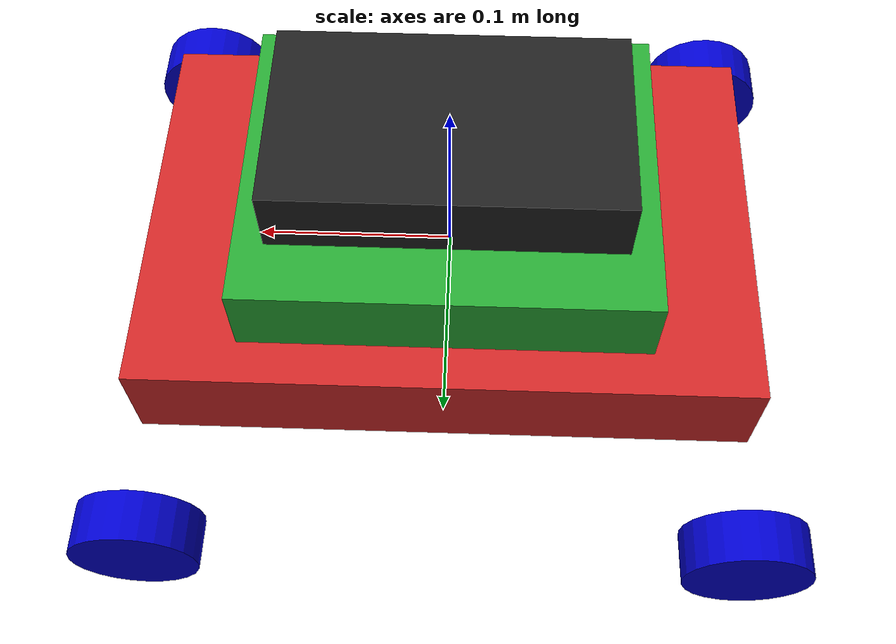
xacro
<?xml version="1.0"?>
<robot xmlns:xacro="http://www.ros.org/wiki/xacro" name="mobile_robot">

<!-- Base Link -->
<link name="base_link">
</link>

<xacro:property name="height" value="0.3048" />
<xacro:property name="width" value="0.2032" />
<xacro:property name="depth" value="0.05" />

<!--Chassis-->
<link name="chassis">
  <visual>
   <origin xyz="0 0 0" rpy="0 0 0"/>​
    <geometry>
      <box size="${height} ${width} ${depth}"/>
    </geometry>
  </visual>
  <collision>
    <geometry>
      <box size="${height} ${width} ${depth}"/>
    </geometry>
  </collision>
  <inertial>
    <mass value="1.0"/> <!-- [kg] -->
    <inertia ixx="0.014167" ixy="0.0" ixz="0.0" iyy="0.026667" iyz="0.0" izz="0.014167"/>
  </inertial>
</link>

<gazebo reference="chassis">
  <material>Gazebo/Red</material>
</gazebo>

<joint name="chassis_joint" type="fixed">
  <parent link="base_link"/>
  <child link="chassis"/>
  <origin xyz="0 0 0"/>
</joint>

<material name="blue">
    <color rgba="0 0 0.8 1"/>
</material>

<xacro:property name="wheel_height" value="0.025" />
<xacro:property name="wheel_radius" value="0.0325" />

<!-- Wheel macro-->
<xacro:macro name="wheel" params="name reflect_x reflect_y reflect_r reflect_axis">

  <!-- Wheel link -->
	<link name="${name}_wheel">
    <visual>
      <geometry>
        <cylinder length="${wheel_height}" radius="${wheel_radius}"/>
      </geometry>
      <material name="blue"/>
    </visual>
    <collision>
      <geometry>
        <cylinder length="${wheel_height}" radius="${wheel_radius}"/>
      </geometry>
    </collision>
    <inertial>
      <mass value="0.1"/>  <!-- [kg] -->
      <inertia ixx="0.00031" ixy="0.0" ixz="0.0" iyy="0.00031" iyz="0.0" izz="0.00054"/>
    </inertial>
  </link>

  <!-- Wheel joint -->
  <joint name="${name}_wheel_joint" type="continuous">
    <parent link="chassis"/>
    <child link="${name}_wheel"/>
    <origin xyz="${reflect_x*height/2} ${reflect_y*(width/2+0.05)} -0.0524" rpy="${reflect_r*1.5707} 0 0"/>
    <axis xyz="0 0 ${reflect_axis}"/>
  </joint>

  <!-- Adding transmission to wheels -->
  <transmission name="${name}_wheel_trans">
    <type>transmission_interface/SimpleTransmission</type>
    <actuator name="${name}_wheel_motor">
      <mechanicalReduction>1</mechanicalReduction>
    </actuator>
    <joint name="${name}_wheel_joint">
      <hardwareInterface>hardware_interface/VelocityJointInterface</hardwareInterface>
    </joint>
  </transmission>

  <gazebo reference="${name}_wheel">
    <material>Gazebo/Blue</material>
  </gazebo>

</xacro:macro>

<!-- Wheels definition-->
<xacro:wheel name="front_right" reflect_x="1" reflect_y="-1" reflect_r="1" reflect_axis="-1"/>
<xacro:wheel name="front_left" reflect_x="1" reflect_y="1" reflect_r="-1" reflect_axis="1"/>
<xacro:wheel name="rear_right" reflect_x="-1" reflect_y="-1" reflect_r="1" reflect_axis="-1"/>
<xacro:wheel name="rear_left" reflect_x="-1" reflect_y="1" reflect_r="-1" reflect_axis="1"/>

<!--jetson_Nano box-->
  <link name="jetson_nano">
    <visual>
      <geometry>
        <box size=" 0.2 0.16 0.06"/>
      </geometry>
      <material name="green"/>
    </visual>
  </link>

<joint name="jetson_nano_joint" type="fixed">
    <parent link="chassis"/>
    <child link="jetson_nano"/>
    <origin xyz="0 0 0.035" rpy="0 0 0"/>
  </joint>

  <gazebo reference="jetson_nano">
    <material>Gazebo/green</material>
    </gazebo>

<!--Lidar box-->
  <link name="Lidar">
    <visual>
      <geometry>
        <box size=" 0.17 0.1 0.06"/>
      </geometry>
      <material name="black"/>
    </visual>
  </link>

<joint name="Lidar_joint" type="fixed">
    <parent link="jetson_nano"/>
    <child link="Lidar"/>
    <origin xyz="0 0 0.035" rpy="0 0 0"/>
  </joint>

  <gazebo reference="Lidar">
    <material>Gazebo/Black</material>
    </gazebo>

<!-- Link Gazebo and ROS -->
<gazebo>
  <plugin name="gazebo_ros_control" filename="libgazebo_ros_control.so">
    <robotNamespace>/</robotNamespace>
  </plugin>
</gazebo>

</robot>
